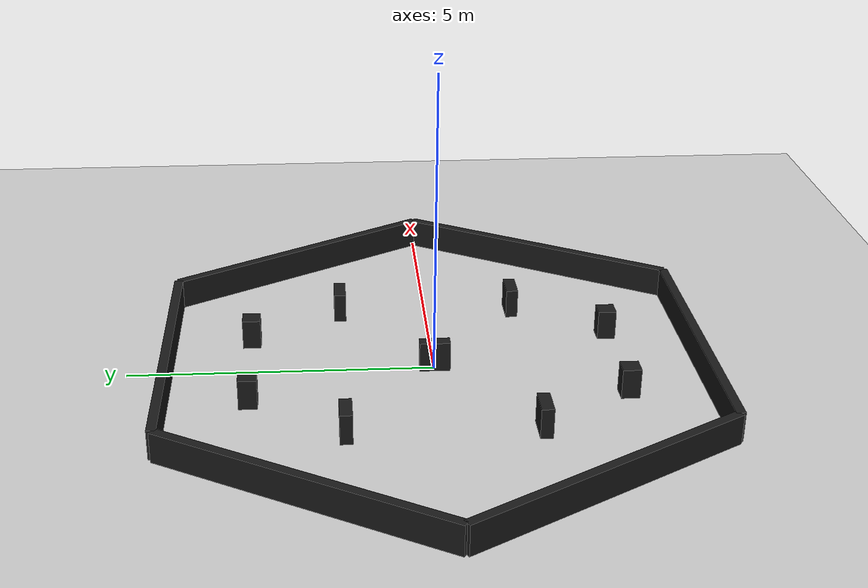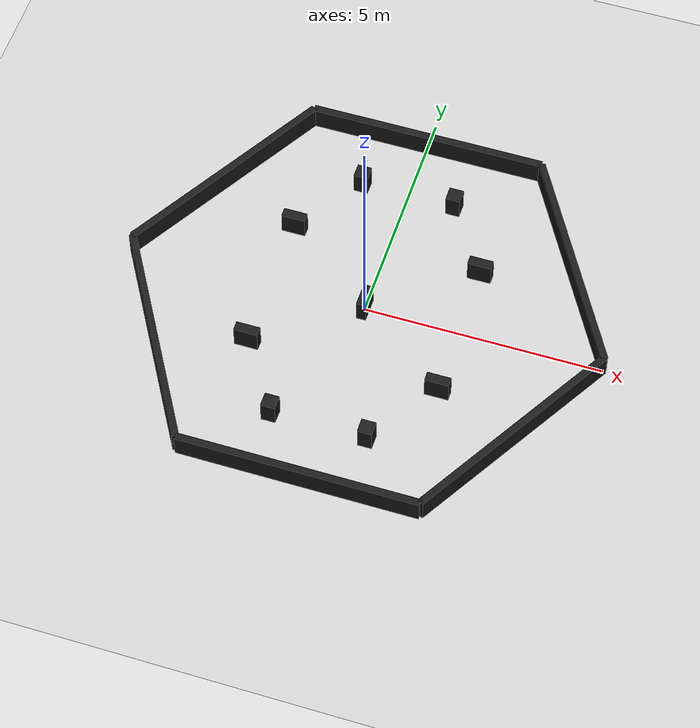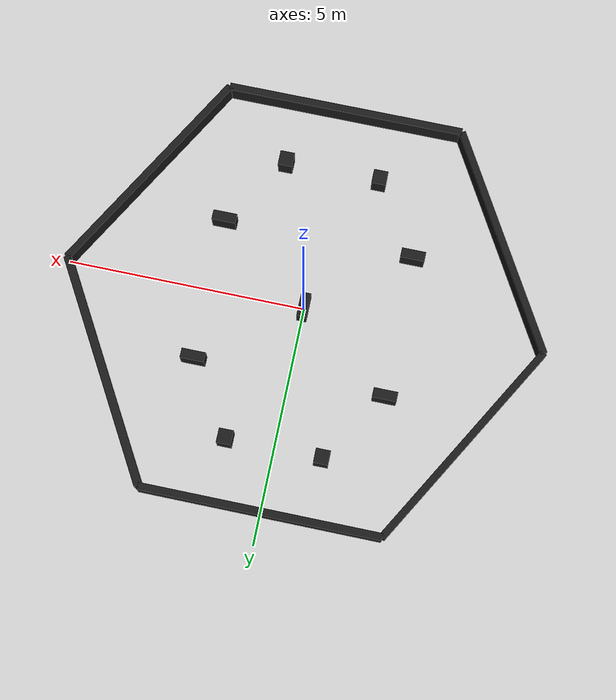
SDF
<?xml version="1.0" ?>

<sdf version="1.8">
  <world name="hexagon_lab_xl">
    <!-- Configure a 1 ms physics step; execution handled by Gazebo physics plugin. -->
    <physics name="1ms" type="ignored">
      <max_step_size>0.001</max_step_size>
      <real_time_factor>1.0</real_time_factor>
    </physics>
    <!-- Core Gazebo systems: physics, user command handling, and scene broadcasting. -->
    <plugin filename="gz-sim-physics-system" name="gz::sim::systems::Physics"></plugin>
    <plugin filename="gz-sim-user-commands-system" name="gz::sim::systems::UserCommands"></plugin>
    <plugin filename="gz-sim-scene-broadcaster-system" name="gz::sim::systems::SceneBroadcaster"></plugin>

    <!-- Soft lighting settings for the virtual scene. -->
    <scene>
      <ambient>0.6 0.6 0.6 1</ambient> <!-- Soft ambient light to reduce harsh shadows. -->
      <background>0.8 0.8 0.8 1</background> <!-- Light gray background for better visibility. -->
      <shadows>false</shadows> <!-- Disabling shadows for performance and visual clarity in this simple environment. -->
    </scene>

    <!-- Directional light emulating sunlight without shadow casting. -->
    <light type="directional" name="sun">
      <cast_shadows>false</cast_shadows> <!-- Disable shadows for performance -->
      <pose>0 0 10 0 0 0</pose>  <!-- Positioned high above the scene -->
      <diffuse>0.6 0.6 0.6 1</diffuse>
      <specular>0.1 0.1 0.1 1</specular>
      <direction>0.5 0.5 -0.9</direction>
    </light>

    <!-- Flat ground plane providing a large collision surface. -->
    <model name="ground_plane">
      <static>true</static>
      <link name="link">
        <collision name="collision"><geometry><plane><normal>0 0 1</normal><size>100 100</size></plane></geometry></collision>
        <visual name="visual">
          <geometry><plane><normal>0 0 1</normal><size>100 100</size></plane></geometry>
          <material><ambient>0.8 0.8 0.8 1</ambient><diffuse>0.8 0.8 0.8 1</diffuse></material>
        </visual>
      </link>
    </model>

    <!-- Hexagonal perimeter walls aligned to the six compass directions. -->
    <model name='hex_N'> <!-- North Wall-->
      <static>true</static>
      <pose>0 4.33 0.25 0 0 0</pose>
      <link name='link'>
        <visual name='v'><geometry><box><size>5.0 0.15 0.5</size></box></geometry><material><ambient>0.1 0.1 0.1 1</ambient><diffuse>0.1 0.1 0.1 1</diffuse></material></visual>
        <collision name='c'><geometry><box><size>5.0 0.15 0.5</size></box></geometry></collision>
      </link>
    </model>
    <model name='hex_S'> <!-- South Wall-->
      <static>true</static>
      <pose>0 -4.33 0.25 0 0 0</pose>
      <link name='link'>
        <visual name='v'><geometry><box><size>5.0 0.15 0.5</size></box></geometry><material><ambient>0.1 0.1 0.1 1</ambient><diffuse>0.1 0.1 0.1 1</diffuse></material></visual>
        <collision name='c'><geometry><box><size>5.0 0.15 0.5</size></box></geometry></collision>
      </link>
    </model>
    <model name='hex_NE'> <!-- Northeast Wall-->
      <static>true</static>
      <pose>3.75 2.16 0.25 0 0 -1.047</pose>
      <link name='link'>
        <visual name='v'><geometry><box><size>5.0 0.15 0.5</size></box></geometry><material><ambient>0.1 0.1 0.1 1</ambient><diffuse>0.1 0.1 0.1 1</diffuse></material></visual>
        <collision name='c'><geometry><box><size>5.0 0.15 0.5</size></box></geometry></collision>
      </link>
    </model>
    <model name='hex_NW'> <!-- Northwest Wall-->
      <static>true</static>
      <pose>-3.75 2.16 0.25 0 0 1.047</pose>
      <link name='link'>
        <visual name='v'><geometry><box><size>5.0 0.15 0.5</size></box></geometry><material><ambient>0.1 0.1 0.1 1</ambient><diffuse>0.1 0.1 0.1 1</diffuse></material></visual>
        <collision name='c'><geometry><box><size>5.0 0.15 0.5</size></box></geometry></collision>
      </link>
    </model>
    <model name='hex_SE'> <!-- Southeast Wall-->
      <static>true</static>
      <pose>3.75 -2.16 0.25 0 0 1.047</pose>
      <link name='link'>
        <visual name='v'><geometry><box><size>5.0 0.15 0.5</size></box></geometry><material><ambient>0.1 0.1 0.1 1</ambient><diffuse>0.1 0.1 0.1 1</diffuse></material></visual>
        <collision name='c'><geometry><box><size>5.0 0.15 0.5</size></box></geometry></collision>
      </link>
    </model>
    <model name='hex_SW'> <!-- Southwest Wall-->
      <static>true</static>
      <pose>-3.75 -2.16 0.25 0 0 -1.047</pose>
      <link name='link'>
        <visual name='v'><geometry><box><size>5.0 0.15 0.5</size></box></geometry><material><ambient>0.1 0.1 0.1 1</ambient><diffuse>0.1 0.1 0.1 1</diffuse></material></visual>
        <collision name='c'><geometry><box><size>5.0 0.15 0.5</size></box></geometry></collision>
      </link>
    </model>

    <!-- Central divider limiting motion through the hexagon core. -->
    <model name='center_wall'>
      <static>true</static>
      <pose>0 0 0.25 0 0 0</pose>
      <link name='link'>
        <visual name='v'><geometry><box><size>0.2 0.5 0.5</size></box></geometry><material><ambient>0.1 0.1 0.1 1</ambient><diffuse>0.1 0.1 0.1 1</diffuse></material></visual>
        <collision name='c'><geometry><box><size>0.2 0.5 0.5</size></box></geometry></collision>
      </link>
    </model>

    <!-- Inner side walls positioned around the center corridor. Their lenght and width are designed to exploit particular occlusion scenarios (YOLO + EKF) -->
    <model name='wall_left_top'> <!-- Left Top Wall -->
      <static>true</static>
      <pose>-2.0 1.5 0.25 0 0 0</pose>
      <link name='link'>
        <visual name='v'><geometry><box><size>0.5 0.2 0.5</size></box></geometry><material><ambient>0.1 0.1 0.1 1</ambient><diffuse>0.1 0.1 0.1 1</diffuse></material></visual>
        <collision name='c'><geometry><box><size>0.5 0.2 0.5</size></box></geometry></collision>
      </link>
    </model>

    <model name='wall_left_bottom'>  <!-- Left Bottom Wall -->
      <static>true</static>
      <pose>-2.0 -1.5 0.25 0 0 0</pose>
      <link name='link'>
        <visual name='v'><geometry><box><size>0.5 0.2 0.5</size></box></geometry><material><ambient>0.1 0.1 0.1 1</ambient><diffuse>0.1 0.1 0.1 1</diffuse></material></visual>
        <collision name='c'><geometry><box><size>0.5 0.2 0.5</size></box></geometry></collision>
      </link>
    </model>

    <model name='wall_right_top'> <!-- Right Top Wall -->
      <static>true</static>
      <pose>2.0 1.5 0.25 0 0 0</pose>
      <link name='link'>
        <visual name='v'><geometry><box><size>0.5 0.2 0.5</size></box></geometry><material><ambient>0.1 0.1 0.1 1</ambient><diffuse>0.1 0.1 0.1 1</diffuse></material></visual>
        <collision name='c'><geometry><box><size>0.5 0.2 0.5</size></box></geometry></collision>
      </link>
    </model>

    <model name='wall_right_bottom'> <!-- Right Bottom Wall -->
      <static>true</static>
      <pose>2.0 -1.5 0.25 0 0 0</pose>
      <link name='link'>
        <visual name='v'><geometry><box><size>0.5 0.2 0.5</size></box></geometry><material><ambient>0.1 0.1 0.1 1</ambient><diffuse>0.1 0.1 0.1 1</diffuse></material></visual>
        <collision name='c'><geometry><box><size>0.5 0.2 0.5</size></box></geometry></collision>
      </link>
    </model>

    <!-- Pillars: their width and height are designed to partially occlude the target ball, creating particular YOLO occlusion scenarios. -->
    <model name='pillar_tl'> <!-- Top Left Pillar -->
      <static>true</static>
      <pose>-1.0 3.0 0.25 0 0 0</pose>
      <link name='link'>
        <visual name='v'><geometry><box><size>0.3 0.3 0.5</size></box></geometry><material><ambient>0.1 0.1 0.1 1</ambient><diffuse>0.1 0.1 0.1 1</diffuse></material></visual>
        <collision name='c'><geometry><box><size>0.3 0.3 0.5</size></box></geometry></collision>
      </link>
    </model>

    <model name='pillar_tr'> <!-- Top Right Pillar -->
      <static>true</static>
      <pose>1.0 3.0 0.25 0 0 0</pose>
      <link name='link'>
        <visual name='v'><geometry><box><size>0.3 0.3 0.5</size></box></geometry><material><ambient>0.1 0.1 0.1 1</ambient><diffuse>0.1 0.1 0.1 1</diffuse></material></visual>
        <collision name='c'><geometry><box><size>0.3 0.3 0.5</size></box></geometry></collision>
      </link>
    </model>

    <model name='pillar_bl'> <!-- Bottom Left Pillar -->
      <static>true</static>
      <pose>-1.0 -3.0 0.25 0 0 0</pose>
      <link name='link'>
        <visual name='v'><geometry><box><size>0.3 0.3 0.5</size></box></geometry><material><ambient>0.1 0.1 0.1 1</ambient><diffuse>0.1 0.1 0.1 1</diffuse></material></visual>
        <collision name='c'><geometry><box><size>0.3 0.3 0.5</size></box></geometry></collision>
      </link>
    </model>

    <model name='pillar_br'> <!-- Bottom Right Pillar -->
      <static>true</static>
      <pose>1.0 -3.0 0.25 0 0 0</pose>
      <link name='link'>
        <visual name='v'><geometry><box><size>0.3 0.3 0.5</size></box></geometry><material><ambient>0.1 0.1 0.1 1</ambient><diffuse>0.1 0.1 0.1 1</diffuse></material></visual>
        <collision name='c'><geometry><box><size>0.3 0.3 0.5</size></box></geometry></collision>
      </link>
    </model>

  </world>
</sdf>
